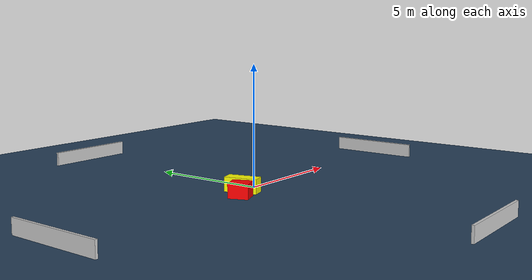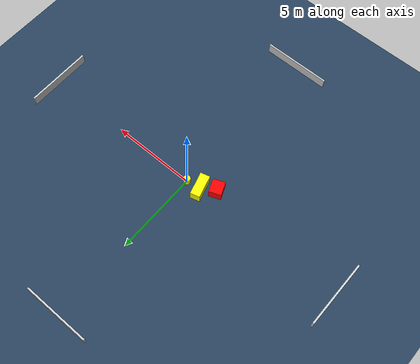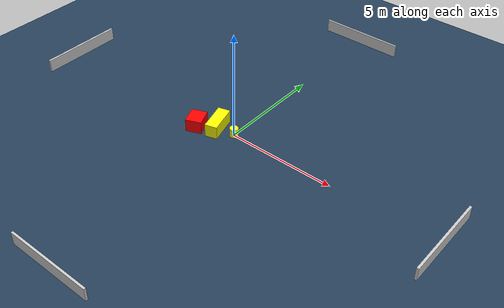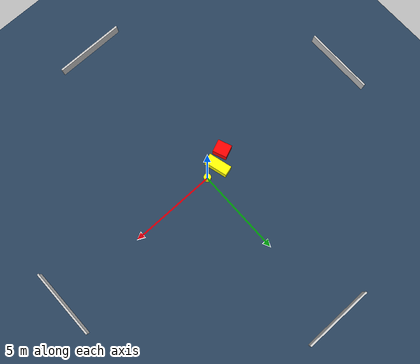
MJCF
<?xml version="1.0" ?>
<mujoco model="generated_environment">
  <option timestep="0.01" integrator="RK4" cone="elliptic"/>
  <default>
    <geom density="1"/>
  </default>
  <asset>
    <texture builtin="gradient" height="3072" name="skybox" rgb1="0.3 0.5 0.7" rgb2="0 0 0" type="skybox" width="512"/>
    <texture builtin="checker" height="300" name="groundplane" rgb1="0.2 0.3 0.4" rgb2="0.1 0.2 0.3" type="2d" width="300"/>
    <material name="groundplane" reflectance="0.2" texrepeat="5 5" texture="groundplane"/>
  </asset>
  <worldbody>
    <light dir="0 0 -1" directional="true" pos="0 0 1.5"/>
    <geom condim="3" friction="0.5 0.005 0.001" material="groundplane" name="floor" pos="0 0 0" size="0 0 0.05" type="plane"/>
    <body name="walls">
      <geom name="wall_1" condim="4" pos="-10.0 0.0 0.3" rgba="0.800000011920929 0.800000011920929 0.800000011920929 1.0" size="0.05 2.0 0.3" type="box"/>
      <geom name="wall_2" condim="4" pos="10.0 0.0 0.3" rgba="0.800000011920929 0.800000011920929 0.800000011920929 1.0" size="0.05 2.0 0.3" type="box"/>
      <geom name="wall_3" condim="4" pos="0.0 -10.0 0.3" rgba="0.800000011920929 0.800000011920929 0.800000011920929 1.0" size="2.0 0.05 0.3" type="box"/>
      <geom name="wall_4" condim="4" pos="0.0 10.0 0.3" rgba="0.800000011920929 0.800000011920929 0.800000011920929 1.0" size="2.0 0.05 0.3" type="box"/>
    </body>
    <body name="robot">
      <joint name="joint_x" type="slide" pos="0 0 0" axis="1 0 0"/>
      <joint name="joint_y" type="slide" pos="0 0 0" axis="0 1 0"/>
      <geom name="robot" type="cylinder" pos="0.0 0.0 0.2" size="0.2 0.2 0.0" mass="5.0" friction="1.0 0.005 0.0001" condim="4" rgba="1.0 1.0 0.0 1.0"/>
    </body>
    <body name="obstacle_1_movable">
      <geom name="obstacle_1_movable" condim="4" pos="-0.8575536433972455 -0.10116219202332564 0.3" euler="0 0 105.58414624318242" friction="0.0 0.005 0.001" rgba="1.0 1.0 0.0 1.0" size="0.6812384248246126 0.2816481290920454 0.3" type="box" mass="0.1"/>
      <joint type="free"/>
    </body>
    <body name="obstacle_2_static">
      <geom name="obstacle_2_static" condim="4" pos="-1.6365375781759897 -0.6065247065389904 0.3" euler="0 0 292.05189312074737" friction="0.0 0.005 0.001" rgba="1.0 0.0 0.0 1.0" size="0.4102880424220038 0.3630199067497586 0.3" type="box"/>
    </body>
  </worldbody>
  <actuator>
    <motor name="actuator_x" joint="joint_x" gear="1" ctrlrange="-1 1"/>
    <motor name="actuator_y" joint="joint_y" gear="1" ctrlrange="-1 1"/>
  </actuator>
</mujoco>
